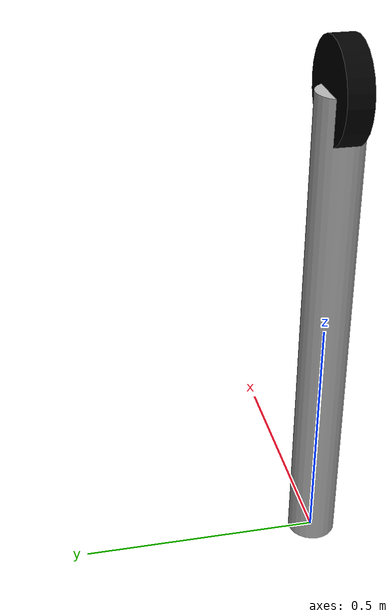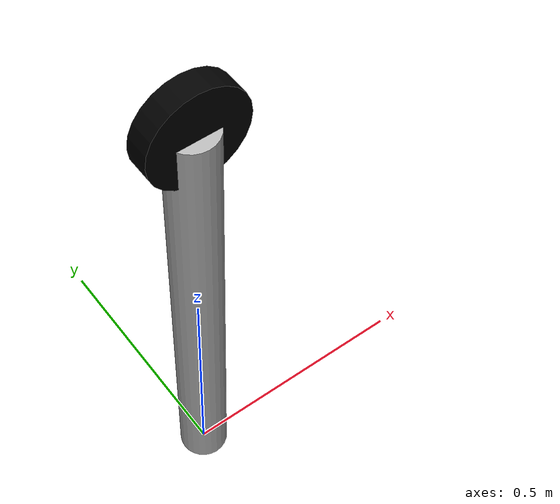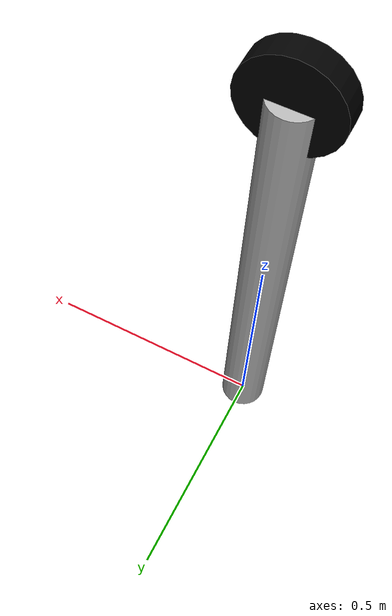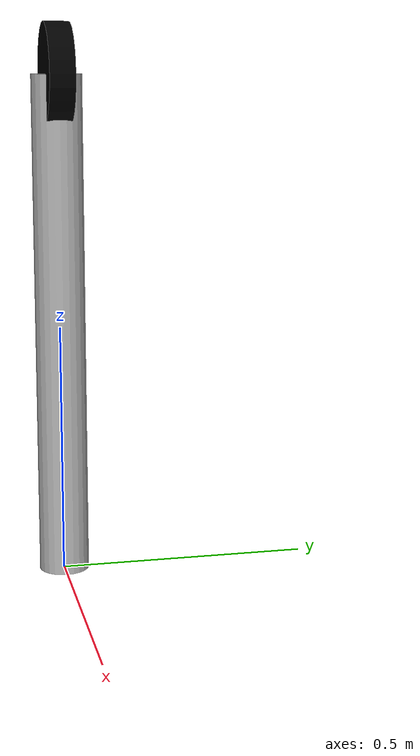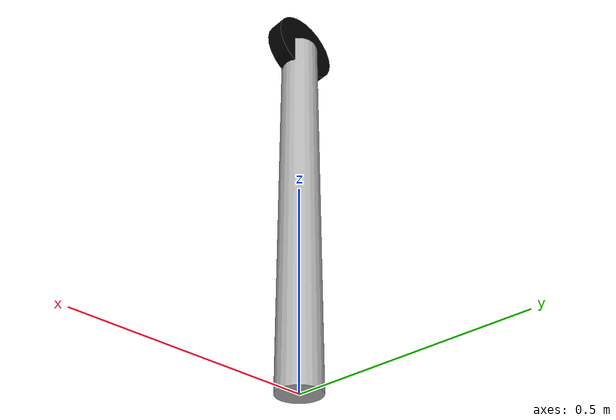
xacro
<?xml version="1.0"?>
<robot name="wheel_robot" xmlns:xacro="http://www.ros.org/wiki/xacro">

    <!-- Include robot parts -->
    <xacro:include filename="robot_parts_move.xacro"/>

    <!-- Include ros2_control configuration -->
    <xacro:include filename="robot_ros2_control_move.xacro"/>

</robot>

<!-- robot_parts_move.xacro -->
<robot name="steerable_wheel_robot" xmlns:xacro="http://www.ros.org/wiki/xacro">
  <!-- World link -->
  <link name="world"/>

  <!-- Vertical cylinder link -->
  <link name="cylinder_link">
    <visual>
      <origin xyz="0 0 0.5" rpy="0 0 0"/>
      <geometry>
        <cylinder radius="0.05" length="1.0"/>
      </geometry>
      <material name="silver">
        <color rgba="0.7 0.7 0.7 1"/>
      </material>
    </visual>
    <collision>
      <origin xyz="0 0 0.5" rpy="0 0 0"/>
      <geometry>
        <cylinder radius="0.05" length="1.0"/>
      </geometry>
    </collision>
    <inertial>
      <mass value="1.0"/>
      <origin xyz="0 0 0.5" rpy="0 0 0"/>
      <inertia ixx="0.0834375" ixy="0" ixz="0" iyy="0.0834375" iyz="0" izz="0.00125"/>
    </inertial>
  </link>

  <!-- Wheel link (cylinder for traction) -->
  <link name="wheel_link">
    <visual>
      <origin xyz="0 0 0" rpy="1.5708 0 0"/>
      <geometry>
        <cylinder radius="0.1" length="0.05"/>
      </geometry>
      <material name="black">
        <color rgba="0 0 0 1"/>
      </material>
    </visual>
    <collision>
      <origin xyz="0 0 0" rpy="1.5708 0 0"/>
      <geometry>
        <cylinder radius="0.1" length="0.05"/>
      </geometry>
    </collision>
    <inertial>
      <mass value="0.2"/>
      <inertia ixx="0.0002667" ixy="0" ixz="0" iyy="0.0002667" iyz="0" izz="0.0002"/>
    </inertial>
  </link>

  <!-- Revolute joint for steering (-90 to 90 degrees) -->
  <joint name="steer_joint" type="revolute">
    <parent link="world"/>
    <child link="cylinder_link"/>
    <origin xyz="0 0 0" rpy="0 0 0"/>
    <axis xyz="0 0 1"/>
    <limit lower="-1.5708" upper="1.5708" velocity="1.0" effort="50"/>
    <dynamics damping="0.05" friction="0.05"/>
  </joint>

  <!-- Continuous joint for wheel traction -->
  <joint name="trac_joint" type="continuous">
    <parent link="cylinder_link"/>
    <child link="wheel_link"/>
    <origin xyz="0 0 1.0" rpy="0 0 0"/>
    <axis xyz="0 1 0"/>
    <dynamics damping="0.01" friction="0.01"/>
  </joint>
</robot>
